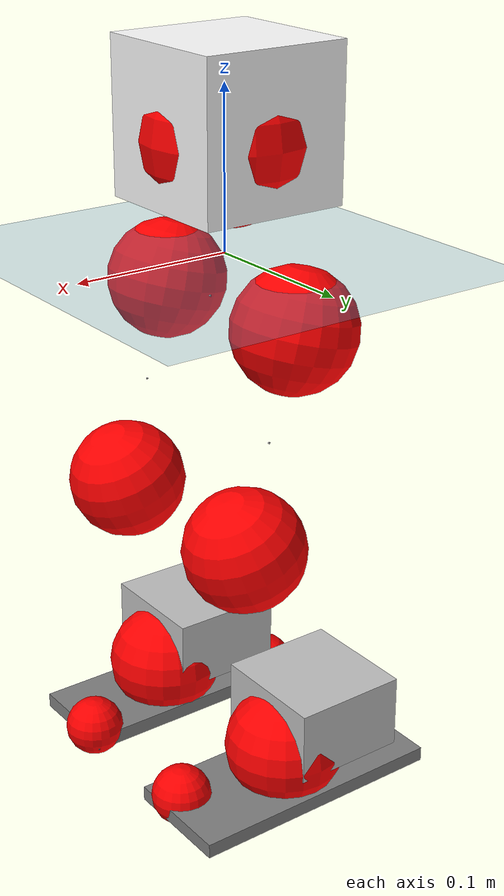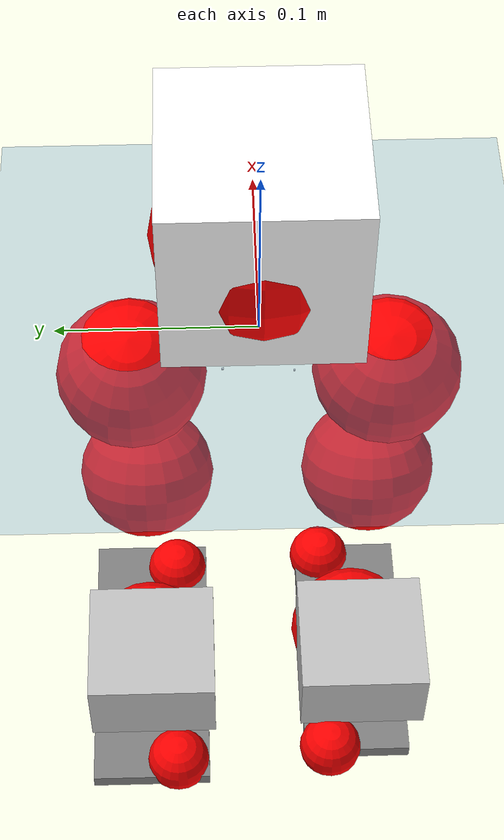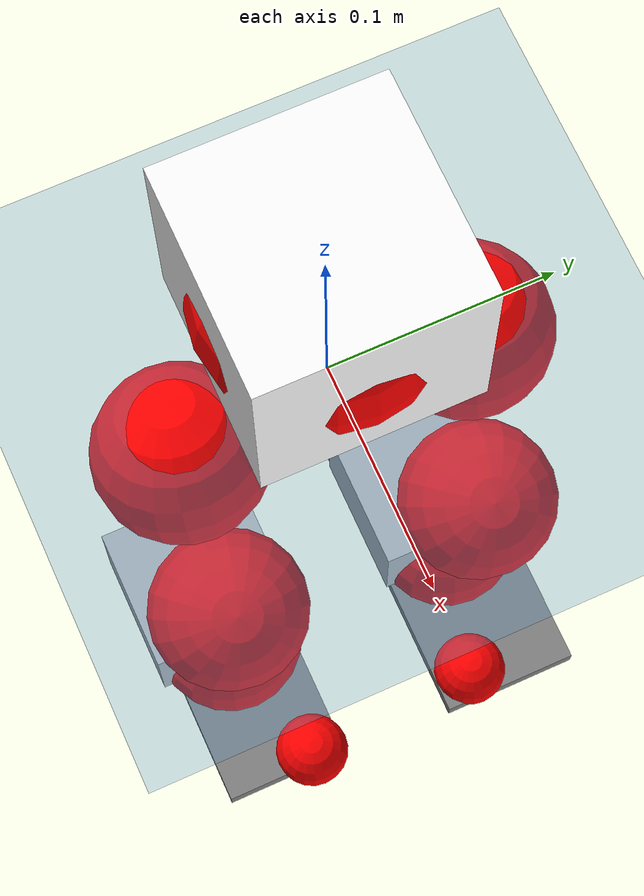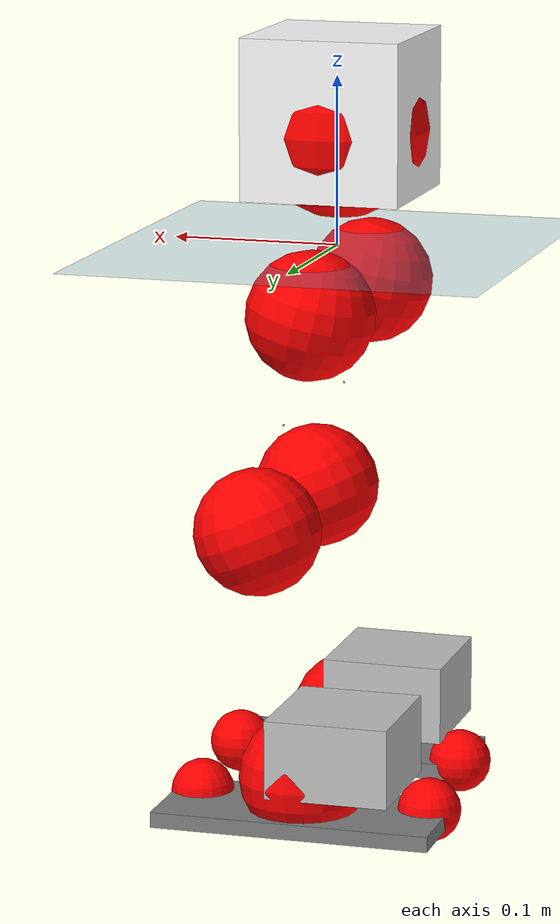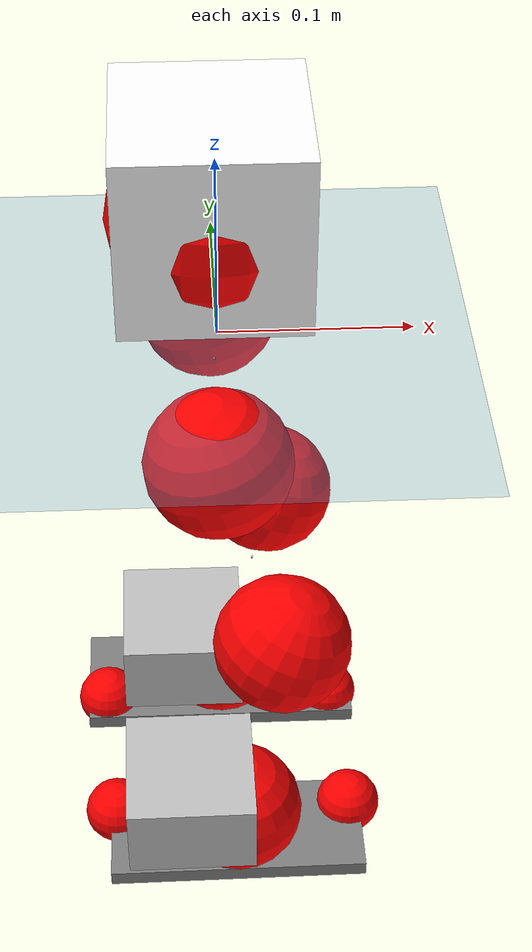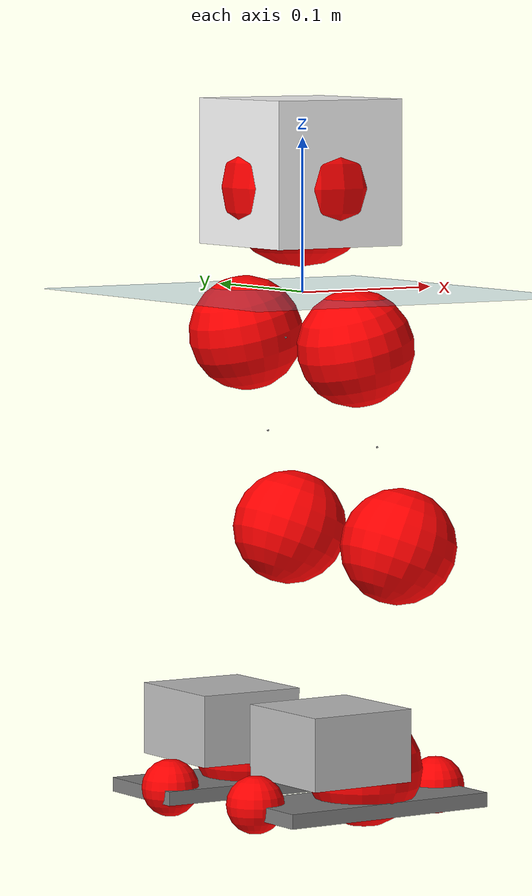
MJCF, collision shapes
<mujoco model="pi_12dof_release_v1">
  <compiler angle="radian" assetdir="assets" balanceinertia="true" inertiafromgeom="false"/>

  <option timestep="0.005" density="1.2" viscosity="2e-05"/>

  <size nkey="1"/>

  <visual>
    <quality shadowsize="8192"/>
    <map shadowclip="0.5"/>
  </visual>

  <default>
    <default class="/">
      <joint armature="0.01" damping="0.01" frictionloss="0.01"/>
      <geom contype="0" conaffinity="0" group="1" solref="-1000 -80"/>
      <site size="0.01 0.005 0.005" group="5"/>
      <general forcelimited="true" biastype="affine" gainprm="20" biasprm="0 -20 -0.5"/>
      <default class="foot">
        <geom size="0.0845 0.036 0.005" type="box" condim="6" group="4" priority="1" friction="0.9 0.2 0.2" solimp="0.015 1 0.005"/>
      </default>
      <default class="reward_collision_sphere">
        <geom group="5" rgba="1 0 0 1"/>
      </default>
    </default>
  </default>

  <asset>
    <texture type="skybox" colorspace="auto" name="//unnamed_texture_0" builtin="gradient" rgb1="0.95 0.95 0.95" rgb2="0.95 0.95 0.95" width="100" height="600"/>
    <texture type="2d" colorspace="auto" name="texplane" builtin="checker" rgb1="0.345 0.575 0.748" rgb2="0.345 0.575 0.748" markrgb="1 1 1" width="512" height="512"/>
    <material name="MatPlane" class="/" texture="texplane" texuniform="true" texrepeat="2 2" specular="0.9"/>
    <mesh name="baselink_1" class="/" file="baselink_1.STL"/>
    <mesh name="r_hip_pitch_link" class="/" file="r_hip_pitch_link.STL"/>
    <mesh name="r_hip_roll_link" class="/" file="r_hip_roll_link.STL"/>
    <mesh name="r_thigh_link" class="/" file="r_thigh_link.STL"/>
    <mesh name="r_calf_link" class="/" file="r_calf_link.STL"/>
    <mesh name="r_ankle_pitch_link" class="/" file="r_ankle_pitch_link.STL"/>
    <mesh name="r_ankle_roll_link" class="/" file="r_ankle_roll_link.STL"/>
    <mesh name="l_hip_pitch_link" class="/" file="l_hip_pitch_link.STL"/>
    <mesh name="l_hip_roll_link" class="/" file="l_hip_roll_link.STL"/>
    <mesh name="l_thigh_link" class="/" file="l_thigh_link.STL"/>
    <mesh name="l_calf_link" class="/" file="l_calf_link.STL"/>
    <mesh name="l_ankle_pitch_link" class="/" file="l_ankle_pitch_link.STL"/>
    <mesh name="l_ankle_roll_link" class="/" file="l_ankle_roll_link.STL"/>
  </asset>

  <worldbody>
    <geom name="floor" class="/" size="100 100 0.125" type="plane" group="0" material="MatPlane"/>
    <light name="toplight_shadow" class="/" pos="0 0 5" dir="0.0990148 0.0990148 -0.990148" type="directional" ambient="0.04 0.04 0.04" diffuse="0.55 0.55 0.55" specular="0.12 0.12 0.12"/>
    <light name="toplight_fill" class="/" pos="0 0 5" dir="0.0990148 0.0990148 -0.990148" type="directional" castshadow="false" ambient="0.04 0.04 0.04" diffuse="0.3 0.3 0.3" specular="0.08 0.08 0.08"/>
    <body name="trunk" pos="-0.00203329 -0.000242768 0.00102365" quat="1 0.000201149 -7.30061e-05 0.000460252">
      <inertial pos="0.000164975 0.000372467 0.0392335" quat="0.69546 0.0131453 0.00570274 0.718422" mass="1.80717" diaginertia="0.0119453 0.00355264 0.00357244"/>
      <joint name="//unnamed_joint_0" type="free"/>
      <geom name="//unnamed_geom_1" class="/" type="mesh" density="0" rgba="1 1 1 1" mesh="baselink_1"/>
      <geom name="//unnamed_geom_2" class="/" size="0.0472039 0.0472039 0.0472039" pos="0 0 0.0772425" type="box" rgba="1 1 1 1"/>
      <geom name="//unnamed_geom_3" class="reward_collision_sphere" size="0.0519243" pos="0 0 0.0675872"/>
      <site name="imu" class="/" pos="-0.00130239 -0.00496078 0.00308748" size="0.00944078"/>
      <camera name="track" class="/" pos="0 -1.65703 0" quat="0.707107 0.707107 0 0" mode="trackcom"/>
      <camera name="ego_camera" class="/" pos="0.0778641 0 0.173796" quat="-0.5 -0.5 0.5 0.5"/>
      <body name="r_hip_pitch_link" pos="2.12944e-05 -0.0177347 -0.0326188" quat="0.99209 0.000287703 -0.125528 -5.37451e-05">
        <inertial pos="-0.00115865 -0.0463935 0.00115003" quat="-0.0185465 0.70604 -0.0288929 0.707339" mass="0.315029" diaginertia="0.000132761 3.80801e-05 7.03892e-05"/>
        <joint name="r_hip_pitch_joint" class="/" pos="0 0 0" axis="0.00354543 -0.999991 0.0023556" range="-1.74881 1.23234" armature="0.00949701" damping="0.0172751" frictionloss="0.00959789"/>
        <geom name="//unnamed_geom_4" class="/" type="mesh" density="0" rgba="0.75294 0.75294 0.75294 1" mesh="r_hip_pitch_link"/>
        <geom name="//unnamed_geom_5" class="/" size="0.000472039 0.000472039 0.000472039" type="box" rgba="0.75294 0.75294 0.75294 1"/>
        <body name="r_hip_roll_link" pos="-1.2062e-05 -0.0465423 -0.000557264" quat="1 -1.00145e-05 5.38696e-07 -4.61843e-06">
          <inertial pos="0.000850972 0.000492103 -0.0581083" quat="0.706173 -0.080439 -0.0835107 0.69848" mass="0.329091" diaginertia="0.00040087 0.000107893 0.000109245"/>
          <joint name="r_hip_roll_joint" class="/" pos="0 0 0" axis="-1 0.000150891 0.000406277" range="-0.142358 0.479445" armature="0.00858527" damping="0.00258296" frictionloss="0.00935749"/>
          <geom name="//unnamed_geom_6" class="/" type="mesh" density="0" rgba="0.75294 0.75294 0.75294 1" mesh="r_hip_roll_link"/>
          <geom name="//unnamed_geom_7" class="/" size="0.000472039 0.000472039 0.000472039" type="box" rgba="0.75294 0.75294 0.75294 1"/>
          <geom name="//unnamed_geom_8" class="reward_collision_sphere" size="0.0377631"/>
          <body name="r_thigh_link" pos="9.35214e-05 3.36633e-05 -0.0663211" quat="1 -3.00008e-05 6.78758e-05 2.34167e-05">
            <inertial pos="7.6138e-05 8.99113e-05 -0.0464122" quat="0.733984 0.679142 0.00501904 -0.0029064" mass="0.0939273" diaginertia="0.000152209 3.65383e-05 4.85472e-05"/>
            <joint name="r_thigh_joint" class="/" pos="0 0 0" axis="-0.00140378 -0.000314084 -0.999999" range="-0.299511 0.589801" armature="0.00877877" damping="0" frictionloss="0.009341"/>
            <geom name="//unnamed_geom_9" class="/" type="mesh" density="0" rgba="0.75294 0.75294 0.75294 1" mesh="r_thigh_link"/>
            <geom name="//unnamed_geom_10" class="/" size="0.000472039 0.000472039 0.000472039" type="box" rgba="0.75294 0.75294 0.75294 1"/>
            <body name="r_calf_link" pos="4.52804e-05 -2.86856e-06 -0.0673578" quat="0.947775 5.84873e-05 0.318939 0.000203716">
              <inertial pos="0.000364213 -0.00153578 -0.0675005" quat="0.999985 -0.00308536 0.000257621 0.00462486" mass="0.70728" diaginertia="0.00423787 0.0013725 0.000147188"/>
              <joint name="r_calf_joint" class="/" pos="0 0 0" axis="6.12517e-05 -1 0.000143242" stiffness="0.00502796" range="-1.65385 0.619496" armature="0.0106382" damping="0" frictionloss="0.0105102"/>
              <geom name="//unnamed_geom_11" class="/" type="mesh" density="0" rgba="0.75294 0.75294 0.75294 1" mesh="r_calf_link"/>
              <geom name="//unnamed_geom_12" class="/" size="0.000472039 0.000472039 0.000472039" type="box" rgba="0.75294 0.75294 0.75294 1"/>
              <geom name="//unnamed_geom_13" class="reward_collision_sphere" size="0.0377631"/>
              <body name="r_ankle_pitch_link" pos="-0.00022094 0.000539445 -0.133815" quat="0.979992 -0.000955144 -0.199033 0.000236806">
                <inertial pos="0.00455715 0.00076463 0.000463313" quat="0.00326825 0.708208 -0.000854428 0.705996" mass="0.145584" diaginertia="0.000375318 8.87556e-05 0.000100553"/>
                <joint name="r_ankle_pitch_joint" class="/" pos="0 0 0" axis="-0.00790035 -0.999923 0.00961872" range="-1.31716 0.517185" armature="0.00927622" damping="0.0094681" frictionloss="0.00938745"/>
                <geom name="//unnamed_geom_14" class="/" type="mesh" density="0" rgba="0.75294 0.75294 0.75294 1" mesh="r_ankle_pitch_link"/>
                <geom name="//unnamed_geom_15" class="/" size="0.0368191 0.0377631 0.023602" type="box" rgba="0.75294 0.75294 0.75294 1"/>
                <body name="r_ankle_roll_link" pos="0.0797104 0.00277756 7.42053e-05" quat="1 7.50931e-06 2.02982e-05 1.46893e-05">
                  <inertial pos="-0.0255191 5.70187e-05 -0.0134946" quat="0.560697 0.430078 0.432397 0.560076" mass="0.439334" diaginertia="0.0014066 0.000406193 0.00024103"/>
                  <joint name="r_ankle_roll_joint" class="/" pos="0 0 0" axis="-0.999917 0.012765 0.00154937" range="-0.162564 0.127984" armature="0.00943531" damping="0.00407975" frictionloss="0.00928645"/>
                  <geom name="//unnamed_geom_16" class="/" type="mesh" density="0" rgba="0.75294 0.75294 0.75294 1" mesh="r_ankle_roll_link"/>
                  <geom name="//unnamed_geom_17" class="/" type="mesh" rgba="0.75294 0.75294 0.75294 1" mesh="r_ankle_roll_link"/>
                  <geom name="right_foot" class="foot" size="0.0752436 0.0321401 0.00478035" pos="-0.0529476 0 -0.0424834"/>
                  <geom name="//unnamed_geom_19" class="reward_collision_sphere" size="0.0377631" pos="-0.0519094 0 -0.0193106"/>
                  <geom name="//unnamed_geom_20" class="reward_collision_sphere" size="0.0188816" pos="0.0155728 0.0165703 -0.0386212"/>
                  <geom name="//unnamed_geom_21" class="reward_collision_sphere" size="0.0188816" pos="-0.124582 0.0165703 -0.0386212"/>
                  <site name="right_foot" class="foot" pos="-0.0529476 0 -0.0424834" size="0.00944078"/>
                </body>
              </body>
            </body>
          </body>
        </body>
      </body>
      <body name="l_hip_pitch_link" pos="0.000856166 0.0183252 -0.0315163" quat="0.99234 0.000417002 -0.123537 -9.32347e-05">
        <inertial pos="0.00289256 0.0451969 -0.000141866" quat="-0.038606 0.705474 0.0295982 0.707064" mass="0.327235" diaginertia="0.000154788 4.13169e-05 8.5137e-05"/>
        <joint name="l_hip_pitch_joint" class="/" pos="0 0 0" axis="-0.00187853 0.999995 -0.00261689" range="-1.25565 1.74945" armature="0.0097736" damping="9.94563e-05" frictionloss="0.00896134"/>
        <geom name="//unnamed_geom_22" class="/" type="mesh" density="0" rgba="0.75294 0.75294 0.75294 1" mesh="l_hip_pitch_link"/>
        <geom name="//unnamed_geom_23" class="/" size="0.000472039 0.000472039 0.000472039" type="box" rgba="0.75294 0.75294 0.75294 1"/>
        <body name="l_hip_roll_link" pos="-0.00142645 0.0457634 0.000724609" quat="1 -0.000283719 0.000855764 -0.000142432">
          <inertial pos="-0.00138273 -0.000464907 -0.0589302" quat="0.697021 -0.0732208 -0.0844759 0.708283" mass="0.321694" diaginertia="0.000398074 0.000107164 0.00010651"/>
          <joint name="l_hip_roll_joint" class="/" pos="0 0 0" axis="-0.999979 0.00259794 -0.00587152" stiffness="0.00536548" range="-0.484464 0.136629" armature="0.00968582" damping="0" frictionloss="0.00903911"/>
          <geom name="//unnamed_geom_24" class="/" type="mesh" density="0" rgba="0.75294 0.75294 0.75294 1" mesh="l_hip_roll_link"/>
          <geom name="//unnamed_geom_25" class="/" size="0.000472039 0.000472039 0.000472039" type="box" rgba="0.75294 0.75294 0.75294 1"/>
          <geom name="//unnamed_geom_26" class="reward_collision_sphere" size="0.0377631"/>
          <body name="l_thigh_link" pos="0.000131464 -0.0010489 -0.0676352" quat="1 0.000127566 0.000150434 -0.000131884">
            <inertial pos="0.000205885 -0.00153813 -0.0466442" quat="0.675351 0.737496 9.20119e-05 0.000103175" mass="0.0952225" diaginertia="0.000150352 3.68874e-05 4.84796e-05"/>
            <joint name="l_thigh_joint" class="/" pos="0 0 0" axis="-0.00047875 0.000423662 -1" range="-0.604143 0.290094" armature="0.00976291" damping="0.00243634" frictionloss="0.00921927"/>
            <geom name="//unnamed_geom_27" class="/" type="mesh" density="0" rgba="0.75294 0.75294 0.75294 1" mesh="l_thigh_link"/>
            <geom name="//unnamed_geom_28" class="/" size="0.000472039 0.000472039 0.000472039" type="box" rgba="0.75294 0.75294 0.75294 1"/>
            <body name="l_calf_link" pos="0.000149072 -0.00117677 -0.0670891" quat="0.947596 -8.24397e-05 0.319472 0.000238514">
              <inertial pos="0.000237635 0.00300619 -0.0675828" quat="0.999937 0.011075 0.000721233 0.00191351" mass="0.688561" diaginertia="0.00423848 0.00136852 0.000148966"/>
              <joint name="l_calf_joint" class="/" pos="0 0 0" axis="0.000932014 0.999999 0.000427566" stiffness="0.00459473" range="-0.652883 1.6614" armature="0.00840884" damping="0.00431072" frictionloss="0.0104269"/>
              <geom name="//unnamed_geom_29" class="/" type="mesh" density="0" rgba="0.75294 0.75294 0.75294 1" mesh="l_calf_link"/>
              <geom name="//unnamed_geom_30" class="/" size="0.000472039 0.000472039 0.000472039" type="box" rgba="0.75294 0.75294 0.75294 1"/>
              <geom name="//unnamed_geom_31" class="reward_collision_sphere" size="0.0377631"/>
              <body name="l_ankle_pitch_link" pos="0.000887393 0.00186856 -0.136344" quat="0.980097 -5.33428e-06 -0.19852 -0.000424216">
                <inertial pos="0.00524495 3.16921e-06 -0.000367804" quat="-0.00177245 0.70676 0.00273928 0.707446" mass="0.15157" diaginertia="0.000380529 8.76078e-05 9.96458e-05"/>
                <joint name="l_ankle_pitch_joint" class="/" pos="0 0 0" axis="0.000263052 0.999999 0.00105656" range="-0.502205 1.29929" armature="0.00950675" damping="0.00220833" frictionloss="0.00896343"/>
                <geom name="//unnamed_geom_32" class="/" type="mesh" density="0" rgba="0.75294 0.75294 0.75294 1" mesh="l_ankle_pitch_link"/>
                <geom name="//unnamed_geom_33" class="/" size="0.0368191 0.0377631 0.023602" type="box" rgba="0.75294 0.75294 0.75294 1"/>
                <body name="l_ankle_roll_link" pos="0.0761636 0.00203723 -0.000107195" quat="1 8.33194e-05 1.63801e-05 4.61766e-05">
                  <inertial pos="-0.0231617 -0.000301232 -0.014721" quat="0.561664 0.432101 0.429617 0.559689" mass="0.436787" diaginertia="0.00131802 0.000389846 0.000231434"/>
                  <joint name="l_ankle_roll_joint" class="/" pos="0 0 0" axis="-0.999982 0.00461916 -0.00382463" range="-0.139074 0.152764" armature="0.00958318" damping="0.00459549" frictionloss="0.00922255"/>
                  <geom name="//unnamed_geom_34" class="/" type="mesh" density="0" rgba="0.75294 0.75294 0.75294 1" mesh="l_ankle_roll_link"/>
                  <geom name="//unnamed_geom_35" class="/" type="mesh" rgba="0.75294 0.75294 0.75294 1" mesh="l_ankle_roll_link"/>
                  <geom name="left_foot" class="foot" size="0.0841453 0.0355376 0.00464988" pos="-0.0529476 0 -0.0424834"/>
                  <geom name="//unnamed_geom_37" class="reward_collision_sphere" size="0.0377631" pos="-0.0519094 0 -0.0193106"/>
                  <geom name="//unnamed_geom_38" class="reward_collision_sphere" size="0.0188816" pos="0.0155728 -0.0165703 -0.0386212"/>
                  <geom name="//unnamed_geom_39" class="reward_collision_sphere" size="0.0188816" pos="-0.124582 -0.0165703 -0.0386212"/>
                  <site name="left_foot" class="foot" pos="-0.0529476 0 -0.0424834" size="0.00944078"/>
                </body>
              </body>
            </body>
          </body>
        </body>
      </body>
    </body>
  </worldbody>

  <contact>
    <pair class="/" geom1="floor" geom2="right_foot" name="//unnamed_contact_1"/>
    <pair class="/" geom1="floor" geom2="left_foot" name="//unnamed_contact_0"/>
  </contact>

  <actuator>
    <general name="r_hip_pitch_joint" class="/" joint="r_hip_pitch_joint" forcerange="-19.9583 19.9583" gainprm="19.1517" biasprm="0 -19.1517 -0.484478"/>
    <general name="r_hip_roll_joint" class="/" joint="r_hip_roll_joint" forcerange="-19.9323 19.9323" gainprm="19.1517" biasprm="0 -19.1517 -0.484478"/>
    <general name="r_thigh_joint" class="/" joint="r_thigh_joint" forcerange="-19.7089 19.7089" gainprm="19.1517" biasprm="0 -19.1517 -0.484478"/>
    <general name="r_calf_joint" class="/" joint="r_calf_joint" forcerange="-19.6931 19.6931" gainprm="19.1517" biasprm="0 -19.1517 -0.484478"/>
    <general name="r_ankle_pitch_joint" class="/" joint="r_ankle_pitch_joint" forcerange="-19.7941 19.7941" gainprm="19.1517" biasprm="0 -19.1517 -0.484478"/>
    <general name="r_ankle_roll_joint" class="/" joint="r_ankle_roll_joint" forcerange="-19.7719 19.7719" gainprm="19.1517" biasprm="0 -19.1517 -0.484478"/>
    <general name="l_hip_pitch_joint" class="/" joint="l_hip_pitch_joint" forcerange="-19.8542 19.8542" gainprm="19.1517" biasprm="0 -19.1517 -0.484478"/>
    <general name="l_hip_roll_joint" class="/" joint="l_hip_roll_joint" forcerange="-20.416 20.416" gainprm="19.1517" biasprm="0 -19.1517 -0.484478"/>
    <general name="l_thigh_joint" class="/" joint="l_thigh_joint" forcerange="-19.7555 19.7555" gainprm="19.1517" biasprm="0 -19.1517 -0.484478"/>
    <general name="l_calf_joint" class="/" joint="l_calf_joint" forcerange="-21.5126 21.5126" gainprm="19.1517" biasprm="0 -19.1517 -0.484478"/>
    <general name="l_ankle_pitch_joint" class="/" joint="l_ankle_pitch_joint" forcerange="-19.9147 19.9147" gainprm="19.1517" biasprm="0 -19.1517 -0.484478"/>
    <general name="l_ankle_roll_joint" class="/" joint="l_ankle_roll_joint" forcerange="-19.3857 19.3857" gainprm="19.1517" biasprm="0 -19.1517 -0.484478"/>
  </actuator>

  <sensor>
    <gyro site="imu" name="imu_angular_velocity"/>
    <velocimeter site="imu" name="imu_linear_velocity"/>
    <framelinvel objtype="site" objname="left_foot" name="left_foot_global_linear_velocity"/>
    <framelinvel objtype="site" objname="right_foot" name="right_foot_global_linear_velocity"/>
  </sensor>

  <keyframe>
    <key name="home" qpos="0 0 0.291 1 0 0 0 0.4 0 0 -0.8 0.4 0 -0.4 0 0 0.8 -0.4 0"/>
  </keyframe>
</mujoco>
